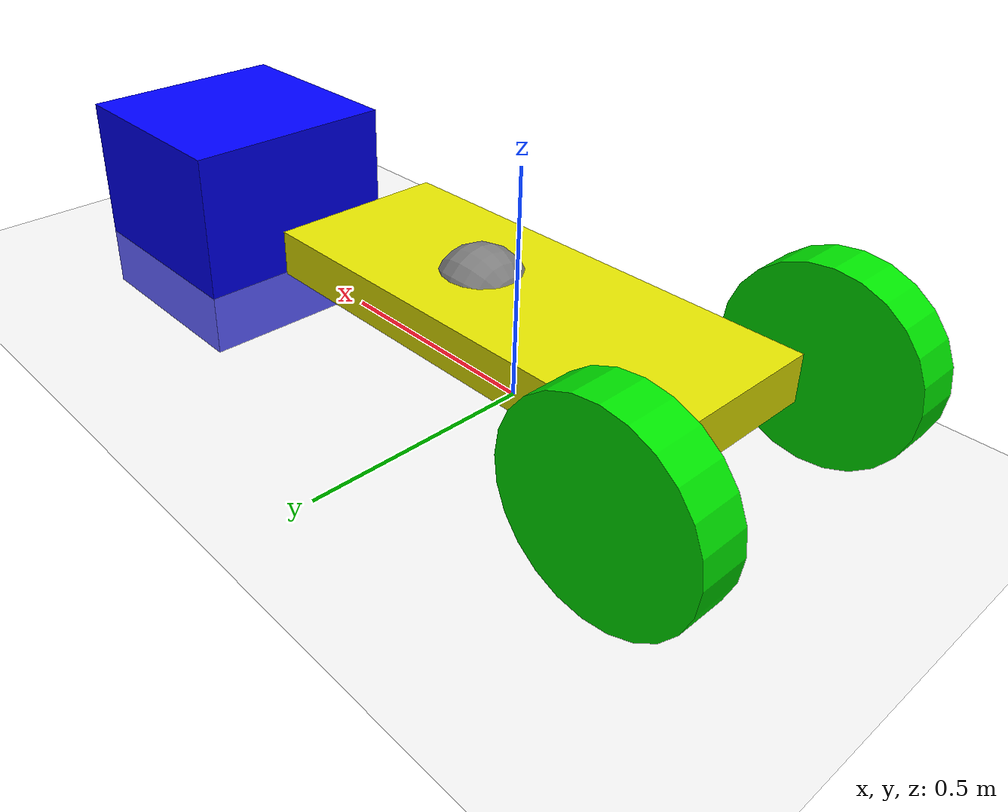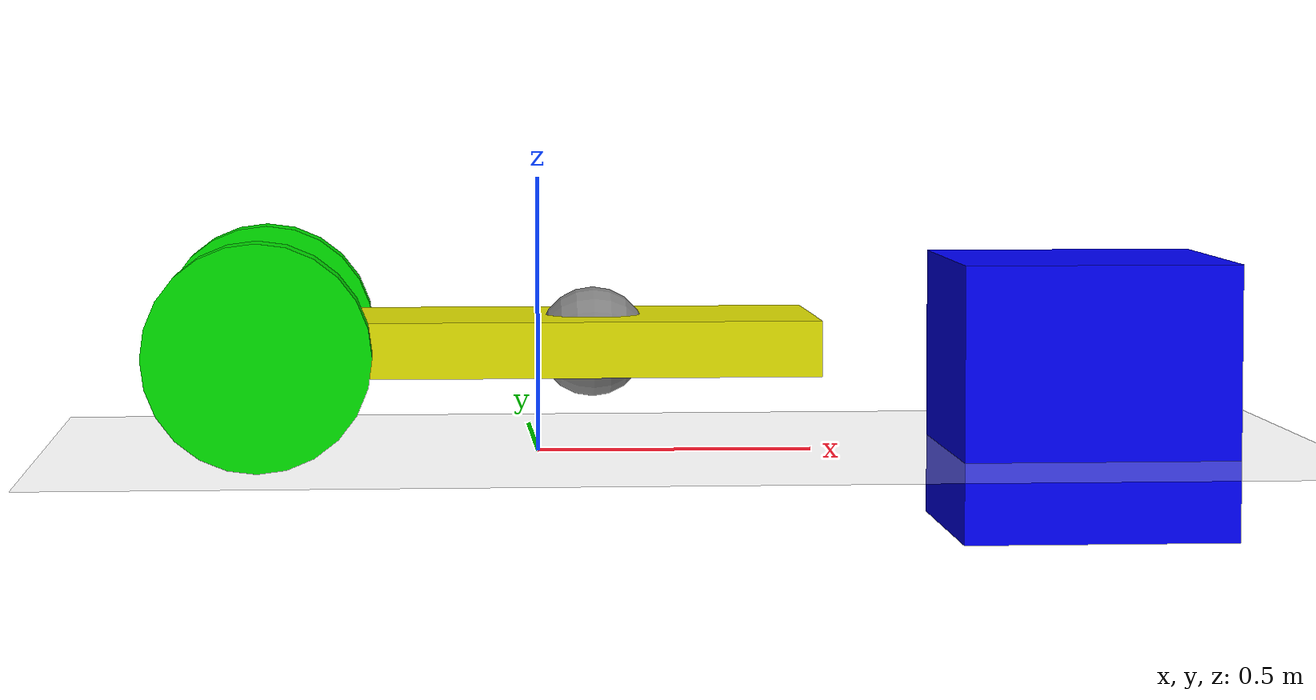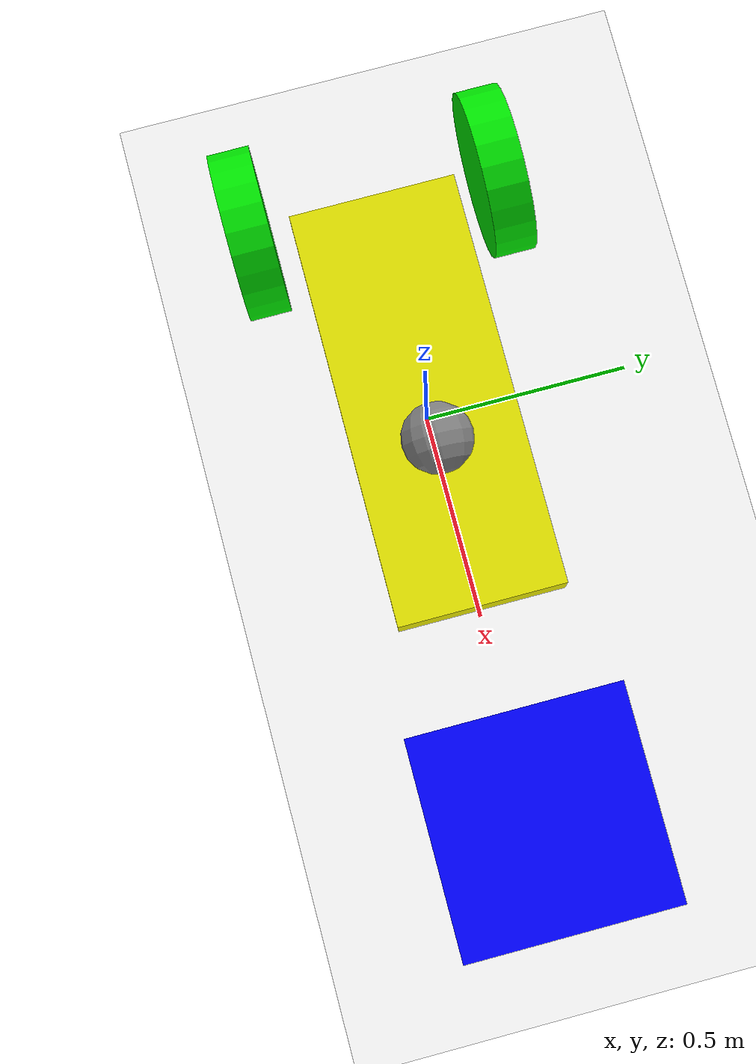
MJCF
<mujoco>
	<option gravity="0 0 -9.81" integrator="RK4" timestep="0.005" />
	<worldbody>
        <light diffuse=".5 .5 .5" pos="0 0 3" dir="0 0 -1"/>
        <body name="floor">
            <geom type="plane" size="5 5 0.1" rgba=".9 .9 .9 1"/>
        </body>
        <body name="obstacle0" pos="1.0 0 0.1">
            <geom type="box" size=".25 .25 .25" rgba="0 0 1 1"/>
        </body>
		<body name = "chassis" pos="0 0 0.2" euler='0 90 0'>
			<joint type="free"/>
			<geom type="box" size=".05 .2 .5" rgba=".9 .9 0 1" />
			<site name="marker" pos = "0 0 0.1" size="0.1" />
			<body name="left-tire" pos="0 0.3 -0.5" euler='90 0 0'>
				<joint name = "left-wheel" type="hinge" axis="0 0 -1"/>
				<geom type="cylinder" size=".2 0.05" rgba="0 .9 0 1" />
			</body>
			<body name="right-tire" pos="0 -0.3 -0.5" euler='90 0 0'>
				<joint name = "right-wheel" type="hinge" axis="0 0 -1"/>
				<geom type="cylinder" size=".2 0.05" rgba="0 .9 0 1" />
			</body>
		</body>
	</worldbody>
	<sensor>
		<framepos objtype="site" objname="marker"/>
	</sensor>
	<actuator>
		<velocity name="left-velocity-servo" joint="left-wheel" kv="100"/>
		<velocity name="right-velocity-servo" joint="right-wheel" kv="100"/>
	</actuator>
</mujoco>
